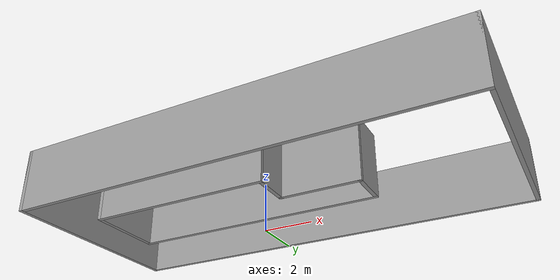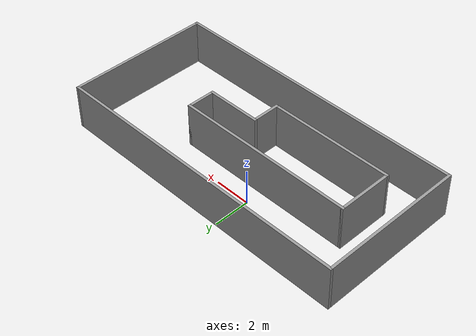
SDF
<?xml version='1.0'?>
<sdf version='1.7'>
  <model name='Untitled'>
    <pose>1.5 -2 0 0 -0 0</pose>
    <link name='Wall_0'>
      <collision name='Wall_0_Collision'>
        <geometry>
          <box>
            <size>10.15 0.15 2.5</size>
          </box>
        </geometry>
        <pose>0 0 1.25 0 -0 0</pose>
      </collision>
      <visual name='Wall_0_Visual'>
        <pose>0 0 1.25 0 -0 0</pose>
        <geometry>
          <box>
            <size>10.15 0.15 2.5</size>
          </box>
        </geometry>
        <material>
          <script>
            <uri>file://media/materials/scripts/gazebo.material</uri>
            <name>Gazebo/Grey</name>
          </script>
          <ambient>1 1 1 1</ambient>
        </material>
        <meta>
          <layer>0</layer>
        </meta>
      </visual>
      <pose>-1.5 1 0 0 -0 0</pose>
    </link>
    <link name='Wall_10'>
      <collision name='Wall_10_Collision'>
        <geometry>
          <box>
            <size>8.15 0.15 2.5</size>
          </box>
        </geometry>
        <pose>0 0 1.25 0 -0 0</pose>
      </collision>
      <visual name='Wall_10_Visual'>
        <pose>0 0 1.25 0 -0 0</pose>
        <geometry>
          <box>
            <size>8.15 0.15 2.5</size>
          </box>
        </geometry>
        <material>
          <script>
            <uri>file://media/materials/scripts/gazebo.material</uri>
            <name>Gazebo/Grey</name>
          </script>
          <ambient>1 1 1 1</ambient>
        </material>
        <meta>
          <layer>0</layer>
        </meta>
      </visual>
      <pose>8.5 0 0 0 -0 1.5708</pose>
    </link>
    <link name='Wall_11'>
      <collision name='Wall_11_Collision'>
        <geometry>
          <box>
            <size>17.15 0.15 2.5</size>
          </box>
        </geometry>
        <pose>0 0 1.25 0 -0 0</pose>
      </collision>
      <visual name='Wall_11_Visual'>
        <pose>0 0 1.25 0 -0 0</pose>
        <geometry>
          <box>
            <size>17.15 0.15 2.5</size>
          </box>
        </geometry>
        <material>
          <script>
            <uri>file://media/materials/scripts/gazebo.material</uri>
            <name>Gazebo/Grey</name>
          </script>
          <ambient>1 1 1 1</ambient>
        </material>
        <meta>
          <layer>0</layer>
        </meta>
      </visual>
      <pose>-0 4 0 0 -0 3.14159</pose>
    </link>
    <link name='Wall_2'>
      <collision name='Wall_2_Collision'>
        <geometry>
          <box>
            <size>1.65 0.15 2.5</size>
          </box>
        </geometry>
        <pose>0 0 1.25 0 -0 0</pose>
      </collision>
      <visual name='Wall_2_Visual'>
        <pose>0 0 1.25 0 -0 0</pose>
        <geometry>
          <box>
            <size>1.65 0.15 2.5</size>
          </box>
        </geometry>
        <material>
          <script>
            <uri>file://media/materials/scripts/gazebo.material</uri>
            <name>Gazebo/Grey</name>
          </script>
          <ambient>1 1 1 1</ambient>
        </material>
        <meta>
          <layer>0</layer>
        </meta>
      </visual>
      <pose>3.5 0.25 0 0 -0 -1.5708</pose>
    </link>
    <link name='Wall_3'>
      <collision name='Wall_3_Collision'>
        <geometry>
          <box>
            <size>3.15 0.15 2.5</size>
          </box>
        </geometry>
        <pose>0 0 1.25 0 -0 0</pose>
      </collision>
      <visual name='Wall_3_Visual'>
        <pose>0 0 1.25 0 -0 0</pose>
        <geometry>
          <box>
            <size>3.15 0.15 2.5</size>
          </box>
        </geometry>
        <material>
          <script>
            <uri>file://media/materials/scripts/gazebo.material</uri>
            <name>Gazebo/Grey</name>
          </script>
          <ambient>1 1 1 1</ambient>
        </material>
        <meta>
          <layer>0</layer>
        </meta>
      </visual>
      <pose>2 -0.5 0 0 -0 3.14159</pose>
    </link>
    <link name='Wall_4'>
      <collision name='Wall_4_Collision'>
        <geometry>
          <box>
            <size>1.65 0.15 2.5</size>
          </box>
        </geometry>
        <pose>0 0 1.25 0 -0 0</pose>
      </collision>
      <visual name='Wall_4_Visual'>
        <pose>0 0 1.25 0 -0 0</pose>
        <geometry>
          <box>
            <size>1.65 0.15 2.5</size>
          </box>
        </geometry>
        <material>
          <script>
            <uri>file://media/materials/scripts/gazebo.material</uri>
            <name>Gazebo/Grey</name>
          </script>
          <ambient>1 1 1 1</ambient>
        </material>
        <meta>
          <layer>0</layer>
        </meta>
      </visual>
      <pose>0.5 -1.25 0 0 -0 -1.5708</pose>
    </link>
    <link name='Wall_5'>
      <collision name='Wall_5_Collision'>
        <geometry>
          <box>
            <size>7.15 0.15 2.5</size>
          </box>
        </geometry>
        <pose>0 0 1.25 0 -0 0</pose>
      </collision>
      <visual name='Wall_5_Visual'>
        <pose>0 0 1.25 0 -0 0</pose>
        <geometry>
          <box>
            <size>7.15 0.15 2.5</size>
          </box>
        </geometry>
        <material>
          <script>
            <uri>file://media/materials/scripts/gazebo.material</uri>
            <name>Gazebo/Grey</name>
          </script>
          <ambient>1 1 1 1</ambient>
        </material>
        <meta>
          <layer>0</layer>
        </meta>
      </visual>
      <pose>-3 -2 0 0 -0 3.14159</pose>
    </link>
    <link name='Wall_6'>
      <collision name='Wall_6_Collision'>
        <geometry>
          <box>
            <size>3.15 0.15 2.5</size>
          </box>
        </geometry>
        <pose>0 0 1.25 0 -0 0</pose>
      </collision>
      <visual name='Wall_6_Visual'>
        <pose>0 0 1.25 0 -0 0</pose>
        <geometry>
          <box>
            <size>3.15 0.15 2.5</size>
          </box>
        </geometry>
        <material>
          <script>
            <uri>file://media/materials/scripts/gazebo.material</uri>
            <name>Gazebo/Grey</name>
          </script>
          <ambient>1 1 1 1</ambient>
        </material>
        <meta>
          <layer>0</layer>
        </meta>
      </visual>
      <pose>-6.5 -0.5 0 0 -0 1.5708</pose>
    </link>
    <link name='Wall_8'>
      <collision name='Wall_8_Collision'>
        <geometry>
          <box>
            <size>8.15 0.15 2.5</size>
          </box>
        </geometry>
        <pose>0 0 1.25 0 -0 0</pose>
      </collision>
      <visual name='Wall_8_Visual'>
        <pose>0 0 1.25 0 -0 0</pose>
        <geometry>
          <box>
            <size>8.15 0.15 2.5</size>
          </box>
        </geometry>
        <material>
          <script>
            <uri>file://media/materials/scripts/gazebo.material</uri>
            <name>Gazebo/Grey</name>
          </script>
          <ambient>1 1 1 1</ambient>
        </material>
        <meta>
          <layer>0</layer>
        </meta>
      </visual>
      <pose>-8.5 0 0 0 -0 -1.5708</pose>
    </link>
    <link name='Wall_9'>
      <collision name='Wall_9_Collision'>
        <geometry>
          <box>
            <size>17.15 0.15 2.5</size>
          </box>
        </geometry>
        <pose>0 0 1.25 0 -0 0</pose>
      </collision>
      <visual name='Wall_9_Visual'>
        <pose>0 0 1.25 0 -0 0</pose>
        <geometry>
          <box>
            <size>17.15 0.15 2.5</size>
          </box>
        </geometry>
        <material>
          <script>
            <uri>file://media/materials/scripts/gazebo.material</uri>
            <name>Gazebo/Grey</name>
          </script>
          <ambient>1 1 1 1</ambient>
        </material>
        <meta>
          <layer>0</layer>
        </meta>
      </visual>
      <pose>-0 -4 0 0 -0 0</pose>
    </link>
    <static>1</static>
  </model>
</sdf>
